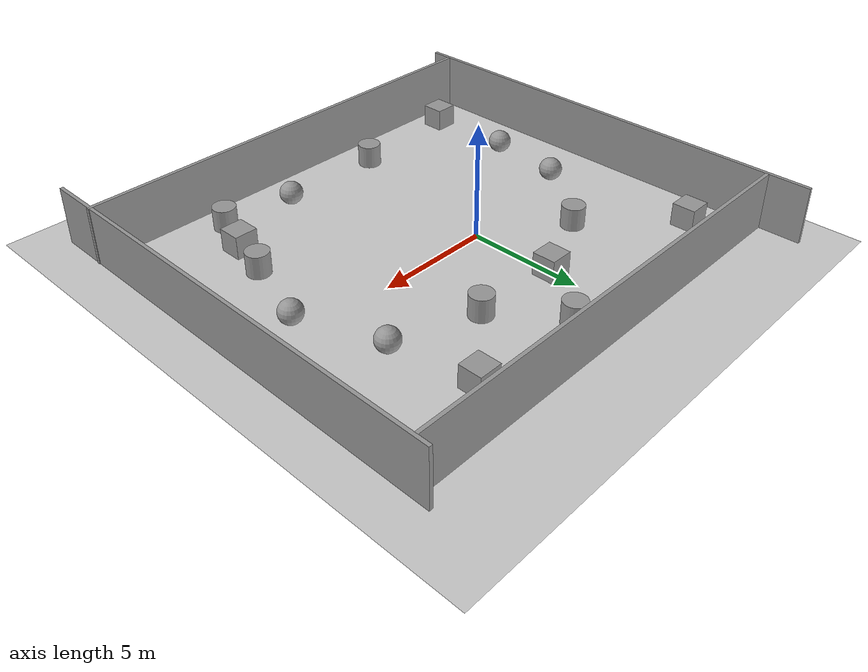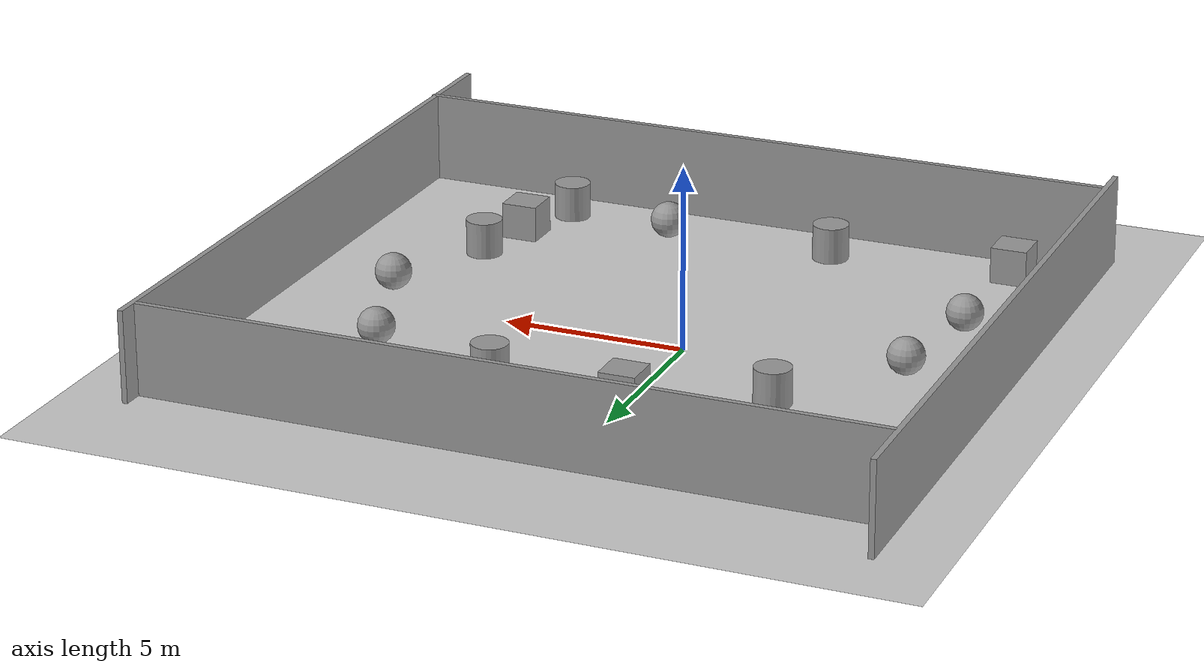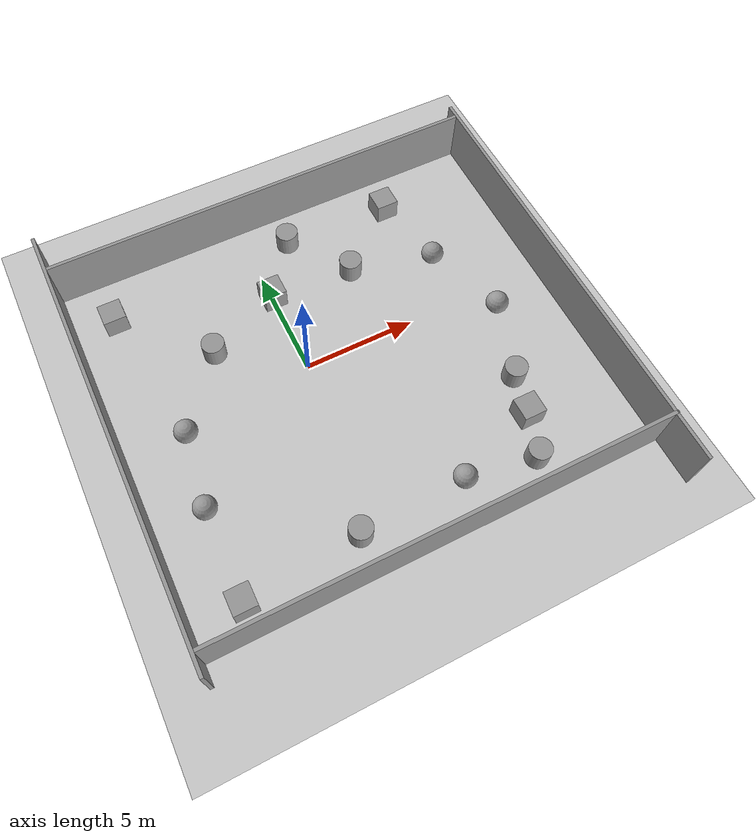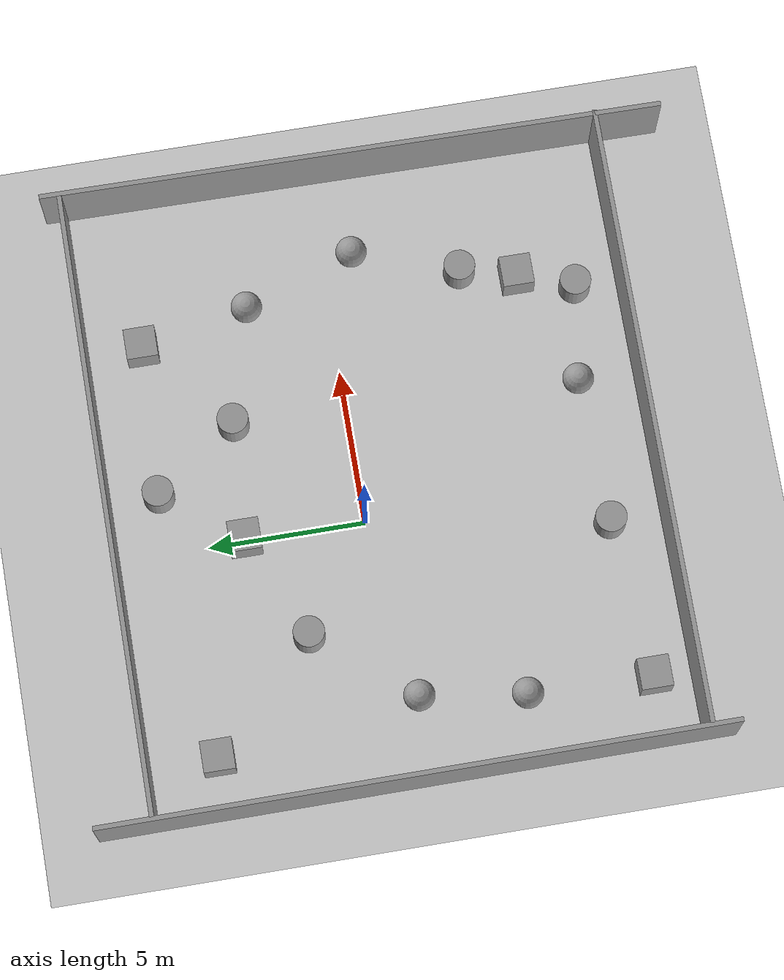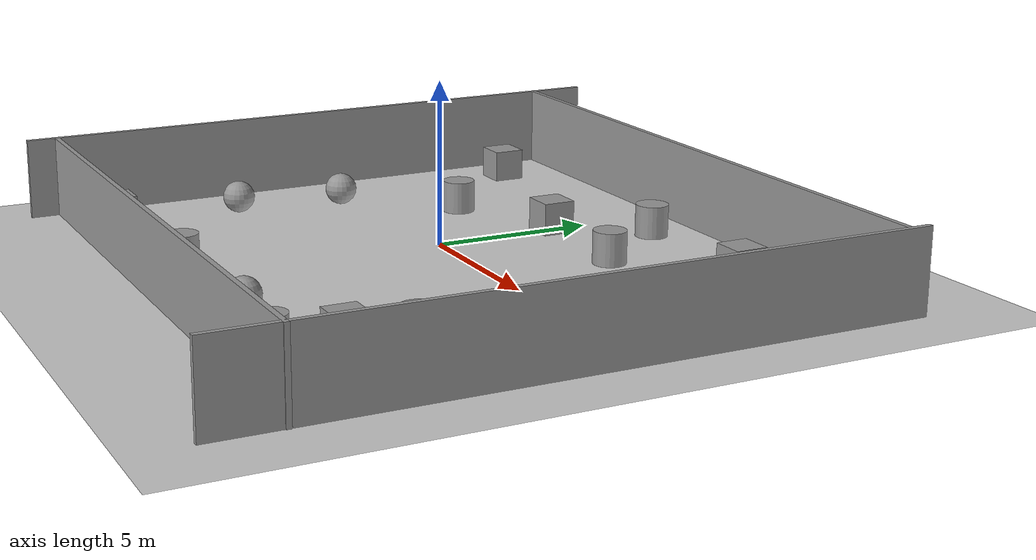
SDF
<sdf version="1.7">
 <world name="default">
  <light name="sun" type="directional">
   <pose>0 0 10 0 -0 0</pose>
   <diffuse>0.8 0.8 0.8 1</diffuse>
   <specular>0.2 0.2 0.2 1</specular>
   <attenuation>
    <range>1000</range>
    <constant>0.9</constant>
    <linear>0.01</linear>
    <quadratic>0.001</quadratic>
   </attenuation>
   <direction>-0.5 0.1 -0.9</direction>
   <spot><inner_angle>0</inner_angle><outer_angle>0</outer_angle><falloff>0</falloff></spot>
  </light>
  <model name="ground_plane">
   <static>1</static>
   <link name="link">
    <collision name="collision">
     <geometry><plane><normal>0 0 1</normal><size>100 100</size></plane></geometry>
     <surface>
      <contact><collide_bitmask>65535</collide_bitmask></contact>
      <friction><ode><mu>100</mu><mu2>50</mu2></ode></friction>
     </surface>
    </collision>
    <visual name="visual">
     <cast_shadows>0</cast_shadows>
     <geometry><plane><normal>0 0 1</normal><size>100 100</size></plane></geometry>
     <material>
      <script><uri>file://media/materials/scripts/gazebo.material</uri><name>Gazebo/Grey</name></script>
     </material>
    </visual>
   </link>
  </model>
  <gravity>0 0 -9.8</gravity>
  <magnetic_field>6e-06 2.3e-05 -4.2e-05</magnetic_field>
  <atmosphere type="adiabatic"/>
  <physics type="ode">
   <max_step_size>0.001</max_step_size>
   <real_time_factor>1</real_time_factor>
   <real_time_update_rate>1000</real_time_update_rate>
  </physics>
  <scene><ambient>0.4 0.4 0.4 1</ambient><background>0.7 0.7 0.7 1</background><shadows>1</shadows></scene>
  <audio><device>default</device></audio>
  <spherical_coordinates>
   <surface_model>EARTH_WGS84</surface_model>
   <latitude_deg>0</latitude_deg>
   <longitude_deg>0</longitude_deg>
   <elevation>0</elevation>
   <heading_deg>0</heading_deg>
  </spherical_coordinates>
  <model name="big_wall">
   <pose>1.55866 -8.70618 -0 0 -0 0</pose>
   <link name="Wall_0">
    <collision name="Wall_0_Collision">
     <geometry><box><size>20 0.15 2.5</size></box></geometry>
     <pose>0 0 1.25 0 -0 0</pose>
    </collision>
    <visual name="Wall_0_Visual">
     <pose>0 0 1.25 0 -0 0</pose>
     <geometry><box><size>20 0.15 2.5</size></box></geometry>
     <material>
      <script><uri>file://media/materials/scripts/gazebo.material</uri><name>Gazebo/Grey</name></script>
      <ambient>1 1 1 1</ambient>
     </material>
     <meta><layer>0</layer></meta>
    </visual>
    <pose>0 -0.6225 0 0 -0 0</pose>
   </link>
   <static>1</static>
  </model>
  <model name="big_wall_0">
   <pose>-9.14634 -0.278658 -0 0 -0 1.57391</pose>
   <link name="Wall_0">
    <collision name="Wall_0_Collision">
     <geometry><box><size>20 0.15 2.5</size></box></geometry>
     <pose>0 0 1.25 0 -0 0</pose>
    </collision>
    <visual name="Wall_0_Visual">
     <pose>0 0 1.25 0 -0 0</pose>
     <geometry><box><size>20 0.15 2.5</size></box></geometry>
     <material>
      <script><uri>file://media/materials/scripts/gazebo.material</uri><name>Gazebo/Grey</name></script>
      <ambient>1 1 1 1</ambient>
     </material>
     <meta><layer>0</layer></meta>
    </visual>
    <pose>0 -0.6225 0 0 -0 0</pose>
   </link>
   <static>1</static>
  </model>
  <model name="big_wall_1">
   <pose>1.50509 8.53544 0 0 -0 0</pose>
   <link name="Wall_0">
    <collision name="Wall_0_Collision">
     <geometry><box><size>20 0.15 2.5</size></box></geometry>
     <pose>0 0 1.25 0 -0 0</pose>
    </collision>
    <visual name="Wall_0_Visual">
     <pose>0 0 1.25 0 -0 0</pose>
     <geometry><box><size>20 0.15 2.5</size></box></geometry>
     <material>
      <script><uri>file://media/materials/scripts/gazebo.material</uri><name>Gazebo/Grey</name></script>
      <ambient>1 1 1 1</ambient>
     </material>
     <meta><layer>0</layer></meta>
    </visual>
    <pose>0 -0.6225 0 0 -0 0</pose>
   </link>
   <static>1</static>
  </model>
  <model name="big_wall_2">
   <pose>10.8849 -1.45074 0 0 -0 1.56381</pose>
   <link name="Wall_0">
    <collision name="Wall_0_Collision">
     <geometry><box><size>20 0.15 2.5</size></box></geometry>
     <pose>0 0 1.25 0 -0 0</pose>
    </collision>
    <visual name="Wall_0_Visual">
     <pose>0 0 1.25 0 -0 0</pose>
     <geometry><box><size>20 0.15 2.5</size></box></geometry>
     <material>
      <script><uri>file://media/materials/scripts/gazebo.material</uri><name>Gazebo/Grey</name></script>
      <ambient>1 1 1 1</ambient>
     </material>
     <meta><layer>0</layer></meta>
    </visual>
    <pose>0 -0.6225 0 0 -0 0</pose>
   </link>
   <static>1</static>
  </model>
  <model name="unit_box">
   <pose>-6.37168 -8.0587 0.499995 -1e-05 -0 -0</pose>
   <link name="link">
    <inertial>
     <mass>1</mass>
     <inertia>
      <ixx>0.166667</ixx>
      <ixy>0</ixy>
      <ixz>0</ixz>
      <iyy>0.166667</iyy>
      <iyz>0</iyz>
      <izz>0.166667</izz>
     </inertia>
    </inertial>
    <collision name="collision"><geometry><box><size>1 1 1</size></box></geometry></collision>
    <visual name="visual">
     <geometry><box><size>1 1 1</size></box></geometry>
     <material>
      <script><name>Gazebo/Grey</name><uri>file://media/materials/scripts/gazebo.material</uri></script>
     </material>
    </visual>
   </link>
  </model>
  <model name="unit_box_0">
   <pose>0.036977 3.82209 0.499995 0 1e-05 0</pose>
   <link name="link">
    <inertial>
     <mass>1</mass>
     <inertia>
      <ixx>0.166667</ixx>
      <ixy>0</ixy>
      <ixz>0</ixz>
      <iyy>0.166667</iyy>
      <iyz>0</iyz>
      <izz>0.166667</izz>
     </inertia>
    </inertial>
    <collision name="collision"><geometry><box><size>1 1 1</size></box></geometry></collision>
    <visual name="visual">
     <geometry><box><size>1 1 1</size></box></geometry>
     <material>
      <script><name>Gazebo/Grey</name><uri>file://media/materials/scripts/gazebo.material</uri></script>
     </material>
    </visual>
   </link>
  </model>
  <model name="unit_cylinder">
   <pose>3.81203 3.61099 0.499998 3e-06 -3e-06 0</pose>
   <link name="link">
    <inertial>
     <mass>1</mass>
     <inertia><ixx>0.145833</ixx><ixy>0</ixy><ixz>0</ixz><iyy>0.145833</iyy><iyz>0</iyz><izz>0.125</izz></inertia>
    </inertial>
    <collision name="collision">
     <geometry><cylinder><radius>0.5</radius><length>1</length></cylinder></geometry>
    </collision>
    <visual name="visual">
     <geometry><cylinder><radius>0.5</radius><length>1</length></cylinder></geometry>
     <material>
      <script><name>Gazebo/Grey</name><uri>file://media/materials/scripts/gazebo.material</uri></script>
     </material>
    </visual>
   </link>
  </model>
  <model name="unit_cylinder_0">
   <pose>6.55302 -7.89434 0.499992 -3e-06 3e-06 0</pose>
   <link name="link">
    <inertial>
     <mass>1</mass>
     <inertia><ixx>0.145833</ixx><ixy>0</ixy><ixz>0</ixz><iyy>0.145833</iyy><iyz>0</iyz><izz>0.125</izz></inertia>
    </inertial>
    <collision name="collision">
     <geometry><cylinder><radius>0.5</radius><length>1</length></cylinder></geometry>
    </collision>
    <visual name="visual">
     <geometry><cylinder><radius>0.5</radius><length>1</length></cylinder></geometry>
     <material>
      <script><name>Gazebo/Grey</name><uri>file://media/materials/scripts/gazebo.material</uri></script>
     </material>
    </visual>
   </link>
  </model>
  <model name="unit_sphere">
   <pose>-6.28341 -4.09701 0.5 0 -0 0</pose>
   <link name="link">
    <inertial>
     <mass>1</mass>
     <inertia><ixx>0.1</ixx><ixy>0</ixy><ixz>0</ixz><iyy>0.1</iyy><iyz>0</iyz><izz>0.1</izz></inertia>
    </inertial>
    <collision name="collision"><geometry><sphere><radius>0.5</radius></sphere></geometry></collision>
    <visual name="visual">
     <geometry><sphere><radius>0.5</radius></sphere></geometry>
     <material>
      <script><name>Gazebo/Grey</name><uri>file://media/materials/scripts/gazebo.material</uri></script>
     </material>
    </visual>
   </link>
  </model>
  <model name="unit_cylinder_1">
   <pose>-3.3482 2.31942 0.499998 3e-06 -3e-06 0</pose>
   <link name="link">
    <inertial>
     <mass>1</mass>
     <inertia><ixx>0.145833</ixx><ixy>0</ixy><ixz>0</ixz><iyy>0.145833</iyy><iyz>0</iyz><izz>0.125</izz></inertia>
    </inertial>
    <collision name="collision">
     <geometry><cylinder><radius>0.5</radius><length>1</length></cylinder></geometry>
    </collision>
    <visual name="visual">
     <geometry><cylinder><radius>0.5</radius><length>1</length></cylinder></geometry>
     <material>
      <script><name>Gazebo/Grey</name><uri>file://media/materials/scripts/gazebo.material</uri></script>
     </material>
    </visual>
   </link>
  </model>
  <model name="unit_box_1">
   <pose>-6.7027 5.70524 0.499995 -1e-05 -0 -0</pose>
   <link name="link">
    <inertial>
     <mass>1</mass>
     <inertia>
      <ixx>0.166667</ixx>
      <ixy>0</ixy>
      <ixz>0</ixz>
      <iyy>0.166667</iyy>
      <iyz>0</iyz>
      <izz>0.166667</izz>
     </inertia>
    </inertial>
    <collision name="collision"><geometry><box><size>1 1 1</size></box></geometry></collision>
    <visual name="visual">
     <geometry><box><size>1 1 1</size></box></geometry>
     <material>
      <script><name>Gazebo/Grey</name><uri>file://media/materials/scripts/gazebo.material</uri></script>
     </material>
    </visual>
   </link>
  </model>
  <model name="unit_sphere_0">
   <pose>7.51146 2.61489 0.5 0 -0 0</pose>
   <link name="link">
    <inertial>
     <mass>1</mass>
     <inertia><ixx>0.1</ixx><ixy>0</ixy><ixz>0</ixz><iyy>0.1</iyy><iyz>0</iyz><izz>0.1</izz></inertia>
    </inertial>
    <collision name="collision"><geometry><sphere><radius>0.5</radius></sphere></geometry></collision>
    <visual name="visual">
     <geometry><sphere><radius>0.5</radius></sphere></geometry>
     <material>
      <script><name>Gazebo/Grey</name><uri>file://media/materials/scripts/gazebo.material</uri></script>
     </material>
    </visual>
   </link>
  </model>
  <model name="unit_cylinder_2">
   <pose>7.64276 -4.32065 0.499992 -3e-06 4e-06 0</pose>
   <link name="link">
    <inertial>
     <mass>1</mass>
     <inertia><ixx>0.145833</ixx><ixy>0</ixy><ixz>0</ixz><iyy>0.145833</iyy><iyz>0</iyz><izz>0.125</izz></inertia>
    </inertial>
    <collision name="collision">
     <geometry><cylinder><radius>0.5</radius><length>1</length></cylinder></geometry>
    </collision>
    <visual name="visual">
     <geometry><cylinder><radius>0.5</radius><length>1</length></cylinder></geometry>
     <material>
      <script><name>Gazebo/Grey</name><uri>file://media/materials/scripts/gazebo.material</uri></script>
     </material>
    </visual>
   </link>
  </model>
  <model name="unit_box_2">
   <pose>7.17887 -6.09385 0.499995 0 1e-05 0</pose>
   <link name="link">
    <inertial>
     <mass>1</mass>
     <inertia>
      <ixx>0.166667</ixx>
      <ixy>0</ixy>
      <ixz>0</ixz>
      <iyy>0.166667</iyy>
      <iyz>0</iyz>
      <izz>0.166667</izz>
     </inertia>
    </inertial>
    <collision name="collision"><geometry><box><size>1 1 1</size></box></geometry></collision>
    <visual name="visual">
     <geometry><box><size>1 1 1</size></box></geometry>
     <material>
      <script><name>Gazebo/Grey</name><uri>file://media/materials/scripts/gazebo.material</uri></script>
     </material>
    </visual>
   </link>
  </model>
  <model name="unit_cylinder_3">
   <pose>-1.28021 -7.6183 0.499998 3e-06 -4e-06 0</pose>
   <link name="link">
    <inertial>
     <mass>1</mass>
     <inertia><ixx>0.145833</ixx><ixy>0</ixy><ixz>0</ixz><iyy>0.145833</iyy><iyz>0</iyz><izz>0.125</izz></inertia>
    </inertial>
    <collision name="collision">
     <geometry><cylinder><radius>0.5</radius><length>1</length></cylinder></geometry>
    </collision>
    <visual name="visual">
     <geometry><cylinder><radius>0.5</radius><length>1</length></cylinder></geometry>
     <material>
      <script><name>Gazebo/Grey</name><uri>file://media/materials/scripts/gazebo.material</uri></script>
     </material>
    </visual>
   </link>
  </model>
  <model name="unit_box_3">
   <pose>6.75973 6.11314 0.499995 0 1e-05 0</pose>
   <link name="link">
    <inertial>
     <mass>1</mass>
     <inertia>
      <ixx>0.166667</ixx>
      <ixy>0</ixy>
      <ixz>0</ixz>
      <iyy>0.166667</iyy>
      <iyz>0</iyz>
      <izz>0.166667</izz>
     </inertia>
    </inertial>
    <collision name="collision"><geometry><box><size>1 1 1</size></box></geometry></collision>
    <visual name="visual">
     <geometry><box><size>1 1 1</size></box></geometry>
     <material>
      <script><name>Gazebo/Grey</name><uri>file://media/materials/scripts/gazebo.material</uri></script>
     </material>
    </visual>
   </link>
  </model>
  <model name="unit_sphere_1">
   <pose>3.4426 -7.44429 0.5 0 -0 0</pose>
   <link name="link">
    <inertial>
     <mass>1</mass>
     <inertia><ixx>0.1</ixx><ixy>0</ixy><ixz>0</ixz><iyy>0.1</iyy><iyz>0</iyz><izz>0.1</izz></inertia>
    </inertial>
    <collision name="collision"><geometry><sphere><radius>0.5</radius></sphere></geometry></collision>
    <visual name="visual">
     <geometry><sphere><radius>0.5</radius></sphere></geometry>
     <material>
      <script><name>Gazebo/Grey</name><uri>file://media/materials/scripts/gazebo.material</uri></script>
     </material>
    </visual>
   </link>
  </model>
  <model name="unit_cylinder_4">
   <pose>1.86825 6.29387 0.499997 3e-06 4e-06 -0</pose>
   <link name="link">
    <inertial>
     <mass>1</mass>
     <inertia><ixx>0.145833</ixx><ixy>0</ixy><ixz>0</ixz><iyy>0.145833</iyy><iyz>0</iyz><izz>0.125</izz></inertia>
    </inertial>
    <collision name="collision">
     <geometry><cylinder><radius>0.5</radius><length>1</length></cylinder></geometry>
    </collision>
    <visual name="visual">
     <geometry><cylinder><radius>0.5</radius><length>1</length></cylinder></geometry>
     <material>
      <script><name>Gazebo/Grey</name><uri>file://media/materials/scripts/gazebo.material</uri></script>
     </material>
    </visual>
   </link>
  </model>
  <model name="unit_sphere_2">
   <pose>-5.80893 -0.751547 0.5 0 -0 0</pose>
   <link name="link">
    <inertial>
     <mass>1</mass>
     <inertia><ixx>0.1</ixx><ixy>0</ixy><ixz>0</ixz><iyy>0.1</iyy><iyz>0</iyz><izz>0.1</izz></inertia>
    </inertial>
    <collision name="collision"><geometry><sphere><radius>0.5</radius></sphere></geometry></collision>
    <visual name="visual">
     <geometry><sphere><radius>0.5</radius></sphere></geometry>
     <material>
      <script><name>Gazebo/Grey</name><uri>file://media/materials/scripts/gazebo.material</uri></script>
     </material>
    </visual>
   </link>
  </model>
  <model name="unit_sphere_3">
   <pose>8.79223 -0.994736 0.5 0 -0 0</pose>
   <link name="link">
    <inertial>
     <mass>1</mass>
     <inertia><ixx>0.1</ixx><ixy>0</ixy><ixz>0</ixz><iyy>0.1</iyy><iyz>0</iyz><izz>0.1</izz></inertia>
    </inertial>
    <collision name="collision"><geometry><sphere><radius>0.5</radius></sphere></geometry></collision>
    <visual name="visual">
     <geometry><sphere><radius>0.5</radius></sphere></geometry>
     <material>
      <script><name>Gazebo/Grey</name><uri>file://media/materials/scripts/gazebo.material</uri></script>
     </material>
    </visual>
   </link>
  </model>
 </world>
</sdf>
